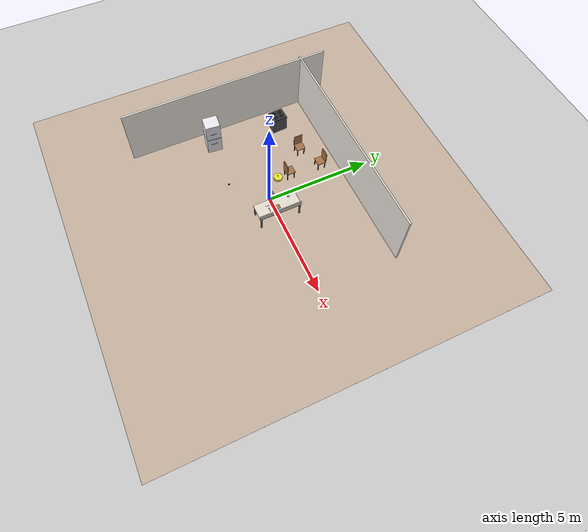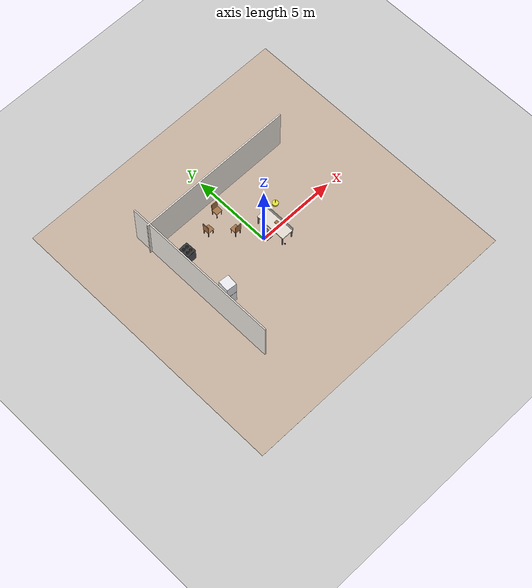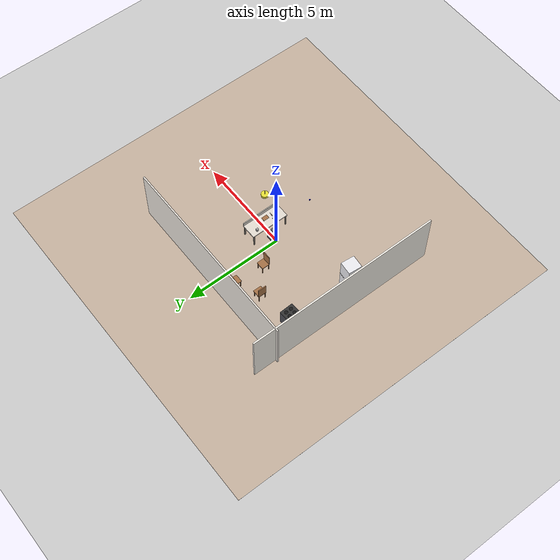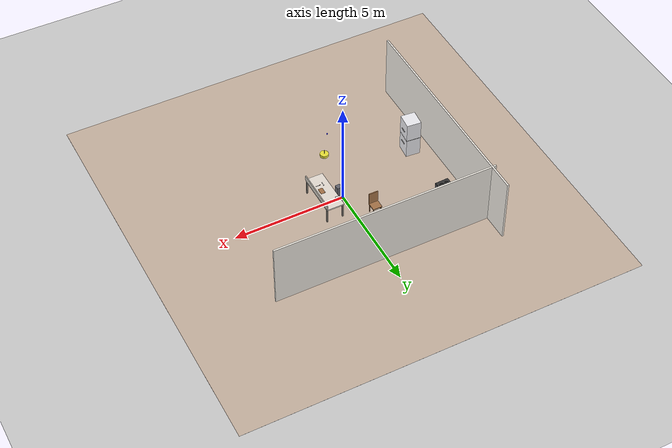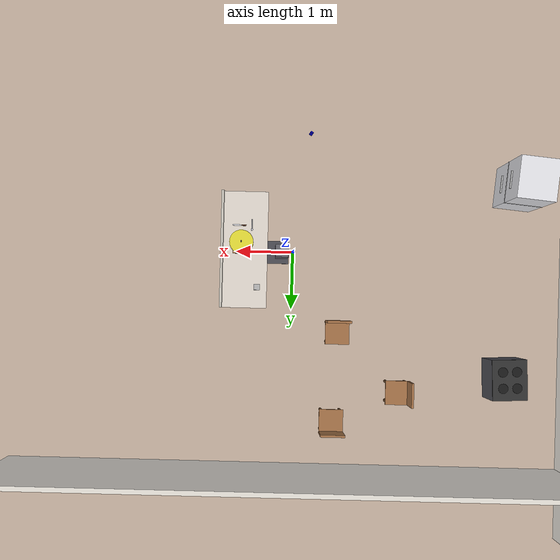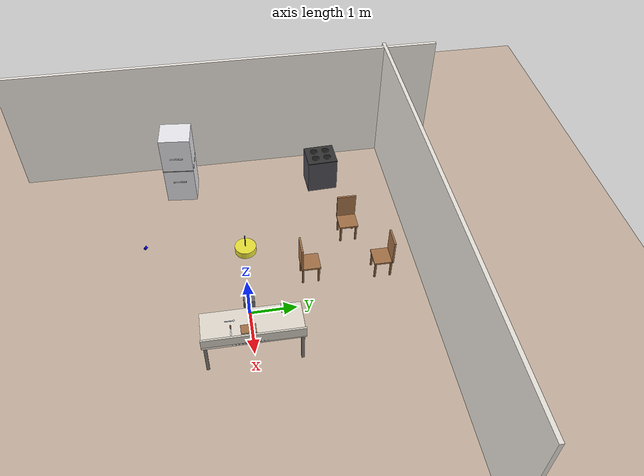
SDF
<sdf version="1.6">
 <world name="kitchen">
  <scene>
   <ambient>0.55 0.55 0.55 1</ambient>
   <background>0.75 0.78 0.82 1</background>
   <shadows>false</shadows>
   <grid>false</grid>
   <origin_visual>false</origin_visual>
  </scene>
  <include><uri>model://sun</uri></include>
  <include><uri>model://ground_plane</uri></include>
  <plugin name="model_attachment" filename="libboeing_gazebo_model_attachment_plugin_lib.so"/>
  <plugin name="gazebo_ros_state" filename="libgazebo_ros_state.so">
   <ros><namespace>/gazebo</namespace></ros>
   <update_rate>10.0</update_rate>
  </plugin>
  <physics name="default" type="ode">
   <max_step_size>0.001</max_step_size>
   <real_time_factor>1.0</real_time_factor>
   <ode><solver><type>quick</type><iters>50</iters><sor>1.3</sor></solver></ode>
  </physics>
  <model name="floor">
   <static>true</static>
   <pose>0 0 0.001 0 0 0</pose>
   <link name="s">
    <visual name="v">
     <geometry><box><size>18 18 0.002</size></box></geometry>
     <material><ambient>0.72 0.65 0.58 1</ambient><diffuse>0.78 0.70 0.63 1</diffuse></material>
    </visual>
   </link>
  </model>
  <model name="wall_back">
   <static>true</static>
   <pose>-4.83 0 1.5 0 0 0</pose>
   <link name="s">
    <collision name="c"><geometry><box><size>0.08 10.0 3.0</size></box></geometry></collision>
    <visual name="v">
     <geometry><box><size>0.08 10.0 3.0</size></box></geometry>
     <material><ambient>0.92 0.90 0.87 1</ambient><diffuse>0.95 0.93 0.90 1</diffuse></material>
    </visual>
   </link>
  </model>
  <model name="wall_left">
   <static>true</static>
   <pose>0 3.80 1.5 0 0 0</pose>
   <link name="s">
    <collision name="c"><geometry><box><size>10.0 0.08 3.0</size></box></geometry></collision>
    <visual name="v">
     <geometry><box><size>10.0 0.08 3.0</size></box></geometry>
     <material><ambient>0.88 0.86 0.83 1</ambient><diffuse>0.92 0.90 0.87 1</diffuse></material>
    </visual>
   </link>
  </model>
  <model name="robot_pedestal">
   <static>true</static>
   <pose>0.2 0.0 0.0 0 0 0</pose>
   <link name="column">
    <pose>0 0 0.385 0 0 0</pose>
    <collision name="c"><geometry><box><size>0.22 0.22 0.77</size></box></geometry></collision>
    <visual name="v">
     <geometry><box><size>0.22 0.22 0.77</size></box></geometry>
     <material><ambient>0.35 0.35 0.38 1</ambient><diffuse>0.40 0.40 0.43 1</diffuse></material>
    </visual>
   </link>
   <link name="base">
    <pose>0.07 0 0.025 0 0 0</pose>
    <collision name="c"><geometry><box><size>0.40 0.40 0.05</size></box></geometry></collision>
    <visual name="v">
     <geometry><box><size>0.40 0.40 0.05</size></box></geometry>
     <material><ambient>0.25 0.25 0.28 1</ambient><diffuse>0.30 0.30 0.33 1</diffuse></material>
    </visual>
   </link>
  </model>
  <model name="counter">
   <static>true</static>
   <pose>0.85 0.0 0.0 0 0 0</pose>
   <link name="top">
    <pose>0 0 0.74 0 0 0</pose>
    <collision name="col">
     <geometry><box><size>0.80 2.00 0.06</size></box></geometry>
     <surface><friction><ode><mu>1.0</mu><mu2>1.0</mu2></ode></friction></surface>
    </collision>
    <visual name="vis">
     <geometry><box><size>0.80 2.00 0.06</size></box></geometry>
     <material>
      <ambient>0.85 0.82 0.78 1</ambient>
      <diffuse>0.90 0.87 0.83 1</diffuse>
      <specular>0.3 0.3 0.3 1</specular>
     </material>
    </visual>
   </link>
   <link name="lfl">
    <pose>0.36  0.93 0.37 0 0 0</pose>
    <collision name="c"><geometry><box><size>0.06 0.06 0.74</size></box></geometry></collision>
    <visual name="v">
     <geometry><box><size>0.06 0.06 0.74</size></box></geometry>
     <material><ambient>0.45 0.42 0.40 1</ambient><diffuse>0.50 0.47 0.44 1</diffuse></material>
    </visual>
   </link>
   <link name="lfr">
    <pose>0.36 -0.93 0.37 0 0 0</pose>
    <collision name="c"><geometry><box><size>0.06 0.06 0.74</size></box></geometry></collision>
    <visual name="v">
     <geometry><box><size>0.06 0.06 0.74</size></box></geometry>
     <material><ambient>0.45 0.42 0.40 1</ambient><diffuse>0.50 0.47 0.44 1</diffuse></material>
    </visual>
   </link>
   <link name="lbl">
    <pose>-0.36  0.93 0.37 0 0 0</pose>
    <collision name="c"><geometry><box><size>0.06 0.06 0.74</size></box></geometry></collision>
    <visual name="v">
     <geometry><box><size>0.06 0.06 0.74</size></box></geometry>
     <material><ambient>0.45 0.42 0.40 1</ambient><diffuse>0.50 0.47 0.44 1</diffuse></material>
    </visual>
   </link>
   <link name="lbr">
    <pose>-0.36 -0.93 0.37 0 0 0</pose>
    <collision name="c"><geometry><box><size>0.06 0.06 0.74</size></box></geometry></collision>
    <visual name="v">
     <geometry><box><size>0.06 0.06 0.74</size></box></geometry>
     <material><ambient>0.45 0.42 0.40 1</ambient><diffuse>0.50 0.47 0.44 1</diffuse></material>
    </visual>
   </link>
   <link name="backsplash">
    <pose>0.38 0 0.86 0 0 0</pose>
    <collision name="c"><geometry><box><size>0.04 2.00 0.24</size></box></geometry></collision>
    <visual name="v">
     <geometry><box><size>0.04 2.00 0.24</size></box></geometry>
     <material><ambient>0.76 0.74 0.70 1</ambient><diffuse>0.82 0.80 0.76 1</diffuse></material>
    </visual>
   </link>
  </model>
  <model name="tea_box">
   <pose>0.62 0.64 0.770 0 0 0</pose>
   <static>false</static>
   <link name="link">
    <pose>0 0 0.075 0 0 0</pose>
    <inertial>
     <mass>0.20</mass>
     <inertia><ixx>5.42e-4</ixx><ixy>0</ixy><ixz>0</ixz><iyy>5.42e-4</iyy><iyz>0</iyz><izz>3.33e-4</izz></inertia>
    </inertial>
    <collision name="col">
     <geometry><box><size>0.1 0.1 0.15</size></box></geometry>
     <surface><friction><ode><mu>0.7</mu><mu2>0.7</mu2></ode></friction></surface>
    </collision>
    <visual name="vis">
     <geometry><box><size>0.1 0.1 0.15</size></box></geometry>
     <material>
      <script>
       <uri>model://tea_box/materials/scripts</uri>
       <uri>model://tea_box/materials/textures</uri>
       <name>tea_pat</name>
      </script>
     </material>
    </visual>
   </link>
  </model>
  <model name="spoon">
   <pose>0.7233 -0.4335 0.715 0 0 0</pose>
   <link name="link">
    <pose>0 0 0.070 0 0 0</pose>
    <inertial>
     <mass>0.05</mass>
     <inertia><ixx>1.4e-4</ixx><ixy>0</ixy><ixz>0</ixz><iyy>1.0e-5</iyy><iyz>0</iyz><izz>1.4e-4</izz></inertia>
    </inertial>
    <collision name="col">
     <geometry><box><size>0.020 0.180 0.016</size></box></geometry>
     <surface><friction><ode><mu>0.8</mu><mu2>0.8</mu2></ode></friction></surface>
    </collision>
    <visual name="handle">
     <pose>0 0 0 1.5708 0 0</pose>
     <geometry><cylinder><radius>0.008</radius><length>0.18</length></cylinder></geometry>
     <material>
      <ambient>0.80 0.80 0.84 1</ambient>
      <diffuse>0.88 0.88 0.92 1</diffuse>
      <specular>0.85 0.85 0.85 1</specular>
     </material>
    </visual>
    <visual name="head">
     <pose>0 0.09 0 0 0 0</pose>
     <geometry><sphere><radius>0.018</radius></sphere></geometry>
     <material>
      <ambient>0.80 0.80 0.84 1</ambient>
      <diffuse>0.88 0.88 0.92 1</diffuse>
      <specular>0.9 0.9 0.9 1</specular>
     </material>
    </visual>
   </link>
  </model>
  <model name="cutting_board">
   <static>true</static>
   <pose>0.95 -0.08 0.778 0 0 0</pose>
   <link name="link">
    <collision name="col">
     <geometry><box><size>0.20 0.30 0.016</size></box></geometry>
     <surface><friction><ode><mu>1.2</mu><mu2>1.2</mu2></ode></friction></surface>
    </collision>
    <visual name="vis">
     <geometry><box><size>0.20 0.30 0.016</size></box></geometry>
     <material><ambient>0.55 0.38 0.22 1</ambient><diffuse>0.65 0.45 0.28 1</diffuse></material>
    </visual>
   </link>
  </model>
  <model name="knife">
   <pose>0.9421 -0.4182 0.715 0 0 -1.5958</pose>
   <link name="link">
    <pose>0 0 0.070 0 0 0</pose>
    <inertial>
     <mass>0.12</mass>
     <inertia><ixx>4.9e-4</ixx><ixy>0</ixy><ixz>0</ixz><iyy>1.0e-5</iyy><iyz>0</iyz><izz>4.9e-4</izz></inertia>
    </inertial>
    <collision name="col">
     <geometry><box><size>0.022 0.220 0.016</size></box></geometry>
     <surface><friction><ode><mu>0.7</mu><mu2>0.7</mu2></ode></friction></surface>
    </collision>
    <visual name="blade">
     <pose>0 0.040 0 0 0 0</pose>
     <geometry><box><size>0.022 0.150 0.004</size></box></geometry>
     <material>
      <ambient>0.80 0.80 0.82 1</ambient>
      <diffuse>0.88 0.88 0.90 1</diffuse>
      <specular>0.95 0.95 0.95 1</specular>
     </material>
    </visual>
    <visual name="handle">
     <pose>0 -0.080 0 0 0 0</pose>
     <geometry><box><size>0.022 0.080 0.014</size></box></geometry>
     <material><ambient>0.25 0.15 0.10 1</ambient><diffuse>0.35 0.22 0.15 1</diffuse></material>
    </visual>
   </link>
  </model>
  <model name="stove">
   <static>true</static>
   <pose>-3.7513 2.1287 0.0 0 0 -3.1007</pose>
   <link name="body">
    <pose>0 0 0.42 0 0 0</pose>
    <collision name="c"><geometry><box><size>0.60 0.70 0.84</size></box></geometry></collision>
    <visual name="v">
     <geometry><box><size>0.60 0.70 0.84</size></box></geometry>
     <material><ambient>0.25 0.25 0.28 1</ambient><diffuse>0.30 0.30 0.33 1</diffuse></material>
    </visual>
   </link>
   <link name="top">
    <pose>0 0 0.85 0 0 0</pose>
    <collision name="c"><geometry><box><size>0.60 0.70 0.02</size></box></geometry></collision>
    <visual name="v">
     <geometry><box><size>0.60 0.70 0.02</size></box></geometry>
     <material>
      <ambient>0.15 0.15 0.15 1</ambient>
      <diffuse>0.20 0.20 0.20 1</diffuse>
      <specular>0.5 0.5 0.5 1</specular>
     </material>
    </visual>
   </link>
   <link name="b1">
    <pose>-0.12  0.14 0.87 0 0 0</pose>
    <visual name="v">
     <geometry><cylinder><radius>0.085</radius><length>0.01</length></cylinder></geometry>
     <material><ambient>0.08 0.08 0.08 1</ambient><diffuse>0.10 0.10 0.10 1</diffuse></material>
    </visual>
   </link>
   <link name="b2">
    <pose>-0.12 -0.14 0.87 0 0 0</pose>
    <visual name="v">
     <geometry><cylinder><radius>0.085</radius><length>0.01</length></cylinder></geometry>
     <material><ambient>0.08 0.08 0.08 1</ambient><diffuse>0.10 0.10 0.10 1</diffuse></material>
    </visual>
   </link>
   <link name="b3">
    <pose>0.12  0.14 0.87 0 0 0</pose>
    <visual name="v">
     <geometry><cylinder><radius>0.085</radius><length>0.01</length></cylinder></geometry>
     <material><ambient>0.08 0.08 0.08 1</ambient><diffuse>0.10 0.10 0.10 1</diffuse></material>
    </visual>
   </link>
   <link name="b4">
    <pose>0.12 -0.14 0.87 0 0 0</pose>
    <visual name="v">
     <geometry><cylinder><radius>0.085</radius><length>0.01</length></cylinder></geometry>
     <material><ambient>0.08 0.08 0.08 1</ambient><diffuse>0.10 0.10 0.10 1</diffuse></material>
    </visual>
   </link>
  </model>
  <model name="fridge">
   <static>true</static>
   <pose>-3.9212 -1.2194 0.0 0 0 3.0470</pose>
   <link name="link">
    <collision name="col"><geometry><box><size>0.65 0.70 1.80</size></box></geometry></collision>
    <visual name="body">
     <pose>0 0 0.90 0 0 0</pose>
     <geometry><box><size>0.65 0.70 1.80</size></box></geometry>
     <material>
      <ambient>0.90 0.90 0.92 1</ambient>
      <diffuse>0.93 0.93 0.95 1</diffuse>
      <specular>0.6 0.6 0.6 1</specular>
     </material>
    </visual>
    <visual name="handle_top">
     <pose>-0.34 0 1.30 1.5708 0 0</pose>
     <geometry><cylinder><radius>0.015</radius><length>0.30</length></cylinder></geometry>
     <material><ambient>0.65 0.65 0.65 1</ambient><diffuse>0.70 0.70 0.70 1</diffuse></material>
    </visual>
    <visual name="handle_bot">
     <pose>-0.34 0 0.60 1.5708 0 0</pose>
     <geometry><cylinder><radius>0.015</radius><length>0.30</length></cylinder></geometry>
     <material><ambient>0.65 0.65 0.65 1</ambient><diffuse>0.70 0.70 0.70 1</diffuse></material>
    </visual>
    <visual name="divider">
     <pose>0 0 0.92 0 0 0</pose>
     <geometry><box><size>0.66 0.71 0.02</size></box></geometry>
     <material><ambient>0.60 0.60 0.60 1</ambient><diffuse>0.65 0.65 0.65 1</diffuse></material>
    </visual>
   </link>
  </model>
  <model name="chair_north">
   <static>true</static>
   <pose>-0.7334 2.9525 0.0 0 0 -1.5708</pose>
   <link name="seat">
    <pose>0 0 0.44 0 0 0</pose>
    <collision name="c"><geometry><box><size>0.42 0.42 0.04</size></box></geometry></collision>
    <visual name="v">
     <geometry><box><size>0.42 0.42 0.04</size></box></geometry>
     <material><ambient>0.55 0.38 0.22 1</ambient><diffuse>0.65 0.45 0.28 1</diffuse></material>
    </visual>
   </link>
   <link name="back">
    <pose>-0.19 0 0.72 0 0 0</pose>
    <collision name="c"><geometry><box><size>0.04 0.42 0.60</size></box></geometry></collision>
    <visual name="v">
     <geometry><box><size>0.04 0.42 0.60</size></box></geometry>
     <material><ambient>0.55 0.38 0.22 1</ambient><diffuse>0.65 0.45 0.28 1</diffuse></material>
    </visual>
   </link>
   <link name="lfl">
    <pose>0.17  0.17 0.22 0 0 0</pose>
    <collision name="c">
     <geometry><cylinder><radius>0.025</radius><length>0.44</length></cylinder></geometry>
    </collision>
    <visual name="v">
     <geometry><cylinder><radius>0.025</radius><length>0.44</length></cylinder></geometry>
     <material><ambient>0.40 0.28 0.16 1</ambient><diffuse>0.48 0.33 0.20 1</diffuse></material>
    </visual>
   </link>
   <link name="lfr">
    <pose>0.17 -0.17 0.22 0 0 0</pose>
    <collision name="c">
     <geometry><cylinder><radius>0.025</radius><length>0.44</length></cylinder></geometry>
    </collision>
    <visual name="v">
     <geometry><cylinder><radius>0.025</radius><length>0.44</length></cylinder></geometry>
     <material><ambient>0.40 0.28 0.16 1</ambient><diffuse>0.48 0.33 0.20 1</diffuse></material>
    </visual>
   </link>
   <link name="lbl">
    <pose>-0.17  0.17 0.22 0 0 0</pose>
    <collision name="c">
     <geometry><cylinder><radius>0.025</radius><length>0.44</length></cylinder></geometry>
    </collision>
    <visual name="v">
     <geometry><cylinder><radius>0.025</radius><length>0.44</length></cylinder></geometry>
     <material><ambient>0.40 0.28 0.16 1</ambient><diffuse>0.48 0.33 0.20 1</diffuse></material>
    </visual>
   </link>
   <link name="lbr">
    <pose>-0.17 -0.17 0.22 0 0 0</pose>
    <collision name="c">
     <geometry><cylinder><radius>0.025</radius><length>0.44</length></cylinder></geometry>
    </collision>
    <visual name="v">
     <geometry><cylinder><radius>0.025</radius><length>0.44</length></cylinder></geometry>
     <material><ambient>0.40 0.28 0.16 1</ambient><diffuse>0.48 0.33 0.20 1</diffuse></material>
    </visual>
   </link>
  </model>
  <model name="chair_south">
   <static>true</static>
   <pose>-0.8068 1.3908 0.0 0 0 1.5708</pose>
   <link name="seat">
    <pose>0 0 0.44 0 0 0</pose>
    <collision name="c"><geometry><box><size>0.42 0.42 0.04</size></box></geometry></collision>
    <visual name="v">
     <geometry><box><size>0.42 0.42 0.04</size></box></geometry>
     <material><ambient>0.55 0.38 0.22 1</ambient><diffuse>0.65 0.45 0.28 1</diffuse></material>
    </visual>
   </link>
   <link name="back">
    <pose>-0.19 0 0.72 0 0 0</pose>
    <collision name="c"><geometry><box><size>0.04 0.42 0.60</size></box></geometry></collision>
    <visual name="v">
     <geometry><box><size>0.04 0.42 0.60</size></box></geometry>
     <material><ambient>0.55 0.38 0.22 1</ambient><diffuse>0.65 0.45 0.28 1</diffuse></material>
    </visual>
   </link>
   <link name="lfl">
    <pose>0.17  0.17 0.22 0 0 0</pose>
    <collision name="c">
     <geometry><cylinder><radius>0.025</radius><length>0.44</length></cylinder></geometry>
    </collision>
    <visual name="v">
     <geometry><cylinder><radius>0.025</radius><length>0.44</length></cylinder></geometry>
     <material><ambient>0.40 0.28 0.16 1</ambient><diffuse>0.48 0.33 0.20 1</diffuse></material>
    </visual>
   </link>
   <link name="lfr">
    <pose>0.17 -0.17 0.22 0 0 0</pose>
    <collision name="c">
     <geometry><cylinder><radius>0.025</radius><length>0.44</length></cylinder></geometry>
    </collision>
    <visual name="v">
     <geometry><cylinder><radius>0.025</radius><length>0.44</length></cylinder></geometry>
     <material><ambient>0.40 0.28 0.16 1</ambient><diffuse>0.48 0.33 0.20 1</diffuse></material>
    </visual>
   </link>
   <link name="lbl">
    <pose>-0.17  0.17 0.22 0 0 0</pose>
    <collision name="c">
     <geometry><cylinder><radius>0.025</radius><length>0.44</length></cylinder></geometry>
    </collision>
    <visual name="v">
     <geometry><cylinder><radius>0.025</radius><length>0.44</length></cylinder></geometry>
     <material><ambient>0.40 0.28 0.16 1</ambient><diffuse>0.48 0.33 0.20 1</diffuse></material>
    </visual>
   </link>
   <link name="lbr">
    <pose>-0.17 -0.17 0.22 0 0 0</pose>
    <collision name="c">
     <geometry><cylinder><radius>0.025</radius><length>0.44</length></cylinder></geometry>
    </collision>
    <visual name="v">
     <geometry><cylinder><radius>0.025</radius><length>0.44</length></cylinder></geometry>
     <material><ambient>0.40 0.28 0.16 1</ambient><diffuse>0.48 0.33 0.20 1</diffuse></material>
    </visual>
   </link>
  </model>
  <model name="chair_east">
   <static>true</static>
   <pose>-1.8840 2.4237 0.0 0 0 0</pose>
   <link name="seat">
    <pose>0 0 0.44 0 0 0</pose>
    <collision name="c"><geometry><box><size>0.42 0.42 0.04</size></box></geometry></collision>
    <visual name="v">
     <geometry><box><size>0.42 0.42 0.04</size></box></geometry>
     <material><ambient>0.55 0.38 0.22 1</ambient><diffuse>0.65 0.45 0.28 1</diffuse></material>
    </visual>
   </link>
   <link name="back">
    <pose>-0.19 0 0.72 0 0 0</pose>
    <collision name="c"><geometry><box><size>0.04 0.42 0.60</size></box></geometry></collision>
    <visual name="v">
     <geometry><box><size>0.04 0.42 0.60</size></box></geometry>
     <material><ambient>0.55 0.38 0.22 1</ambient><diffuse>0.65 0.45 0.28 1</diffuse></material>
    </visual>
   </link>
   <link name="lfl">
    <pose>0.17  0.17 0.22 0 0 0</pose>
    <collision name="c">
     <geometry><cylinder><radius>0.025</radius><length>0.44</length></cylinder></geometry>
    </collision>
    <visual name="v">
     <geometry><cylinder><radius>0.025</radius><length>0.44</length></cylinder></geometry>
     <material><ambient>0.40 0.28 0.16 1</ambient><diffuse>0.48 0.33 0.20 1</diffuse></material>
    </visual>
   </link>
   <link name="lfr">
    <pose>0.17 -0.17 0.22 0 0 0</pose>
    <collision name="c">
     <geometry><cylinder><radius>0.025</radius><length>0.44</length></cylinder></geometry>
    </collision>
    <visual name="v">
     <geometry><cylinder><radius>0.025</radius><length>0.44</length></cylinder></geometry>
     <material><ambient>0.40 0.28 0.16 1</ambient><diffuse>0.48 0.33 0.20 1</diffuse></material>
    </visual>
   </link>
   <link name="lbl">
    <pose>-0.17  0.17 0.22 0 0 0</pose>
    <collision name="c">
     <geometry><cylinder><radius>0.025</radius><length>0.44</length></cylinder></geometry>
    </collision>
    <visual name="v">
     <geometry><cylinder><radius>0.025</radius><length>0.44</length></cylinder></geometry>
     <material><ambient>0.40 0.28 0.16 1</ambient><diffuse>0.48 0.33 0.20 1</diffuse></material>
    </visual>
   </link>
   <link name="lbr">
    <pose>-0.17 -0.17 0.22 0 0 0</pose>
    <collision name="c">
     <geometry><cylinder><radius>0.025</radius><length>0.44</length></cylinder></geometry>
    </collision>
    <visual name="v">
     <geometry><cylinder><radius>0.025</radius><length>0.44</length></cylinder></geometry>
     <material><ambient>0.40 0.28 0.16 1</ambient><diffuse>0.48 0.33 0.20 1</diffuse></material>
    </visual>
   </link>
  </model>
  <model name="ceiling_lamp">
   <static>true</static>
   <pose>0.85 0.0 2.95 0 0 0</pose>
   <link name="base">
    <visual name="shade">
     <geometry><cylinder><radius>0.18</radius><length>0.12</length></cylinder></geometry>
     <material>
      <ambient>0.85 0.82 0.20 1</ambient>
      <diffuse>0.92 0.89 0.22 1</diffuse>
      <emissive>0.40 0.38 0.08 1</emissive>
     </material>
    </visual>
    <visual name="cord">
     <pose>0 0 0.15 0 0 0</pose>
     <geometry><cylinder><radius>0.008</radius><length>0.30</length></cylinder></geometry>
     <material><ambient>0.2 0.2 0.2 1</ambient><diffuse>0.25 0.25 0.25 1</diffuse></material>
    </visual>
   </link>
  </model>
  <model name="overview_camera">
   <static>true</static>
   <pose>-0.20 -1.80 2.10 0 0.570 1.043</pose>
   <link name="camera_link">
    <visual name="vis">
     <geometry><box><size>0.05 0.05 0.05</size></box></geometry>
     <material><ambient>0 0 0.8 1</ambient><diffuse>0 0 0.8 1</diffuse></material>
    </visual>
    <sensor name="overview_camera" type="camera">
     <update_rate>10</update_rate>
     <camera>
      <horizontal_fov>1.047</horizontal_fov>
      <image><width>640</width><height>480</height><format>R8G8B8</format></image>
      <clip><near>0.05</near><far>7.0</far></clip>
     </camera>
     <plugin name="overview_camera_plugin" filename="libgazebo_ros_camera.so">
      <ros>
       <remapping>~/image_raw:=/overview_camera/image_raw</remapping>
       <remapping>~/camera_info:=/overview_camera/camera_info</remapping>
      </ros>
      <camera_name>overview_camera</camera_name>
      <frame_name>overview_camera_link</frame_name>
     </plugin>
    </sensor>
   </link>
  </model>
 </world>
</sdf>
